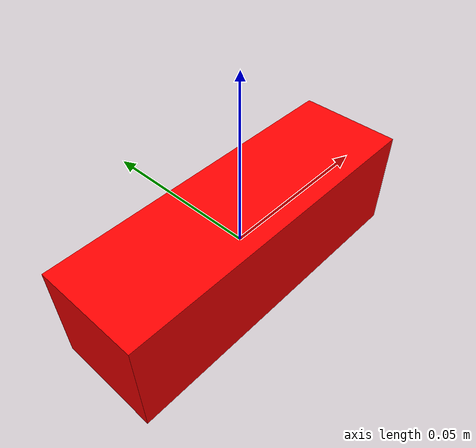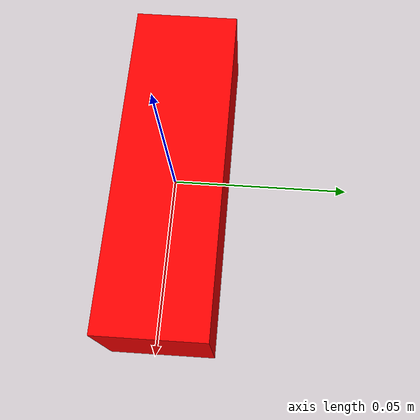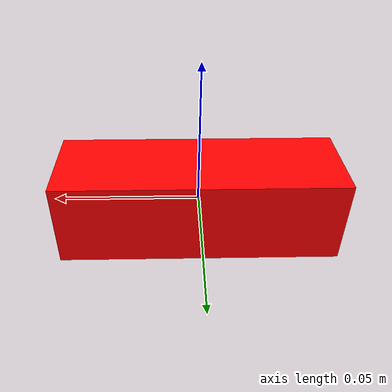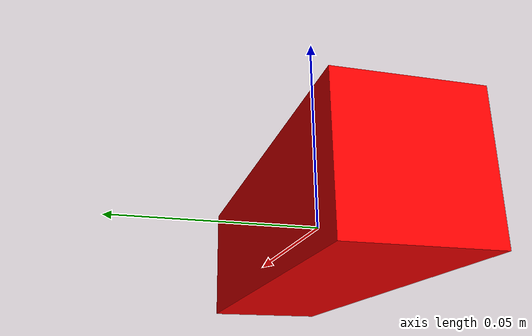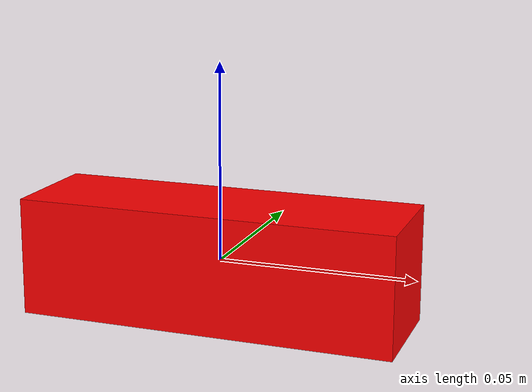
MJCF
<mujoco model="peg">

  <default>
    <default class="stiff">
      <!-- Original MJX setting: stiff contact response for insertion fidelity. -->
      <geom solref="0.005 1"/>
    </default>
  </default>

  <worldbody>
    <body name="peg">
      <site name="peg_end1" pos="0.048 0 0"  group="4"/>
      <site name="peg_end2" pos="-0.048 0 0" group="4"/>
      <joint name="peg" type="free" stiffness="0" damping="0" frictionloss="0" armature="0"/>
      <!-- Collision-only (group=3 keeps Genesis's MJCF parser from
           duplicating it as a white visual vmesh; see mjcf.py:691). -->
      <geom class="stiff" name="red_peg"
            type="box" size="0.048 0.015 0.015" pos="0 0 0"
            mass="0.1" condim="4" friction="1 0.05 0.001"
            contype="1" conaffinity="1" group="3"/>
      <!-- Visual-only counterpart carrying the rgba. -->
      <geom name="red_peg_vis"
            type="box" size="0.048 0.015 0.015" pos="0 0 0"
            rgba="1 0 0 1"
            contype="0" conaffinity="0" group="0"/>

      <!-- Dummy bodies acting as "site" proxies for Genesis. -->
      <body name="peg_end1_site" pos="0.048 0 0">
        <inertial pos="0 0 0" mass="1e-6" diaginertia="1e-9 1e-9 1e-9"/>
      </body>
      <body name="peg_end2_site" pos="-0.048 0 0">
        <inertial pos="0 0 0" mass="1e-6" diaginertia="1e-9 1e-9 1e-9"/>
      </body>
    </body>
  </worldbody>
</mujoco>
